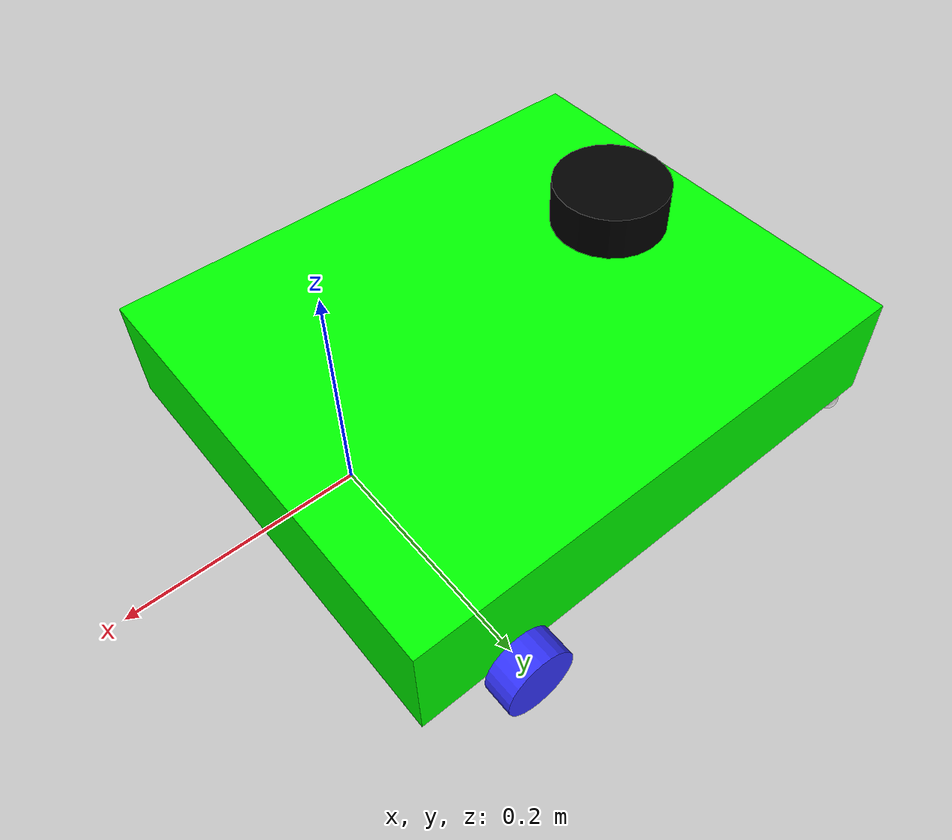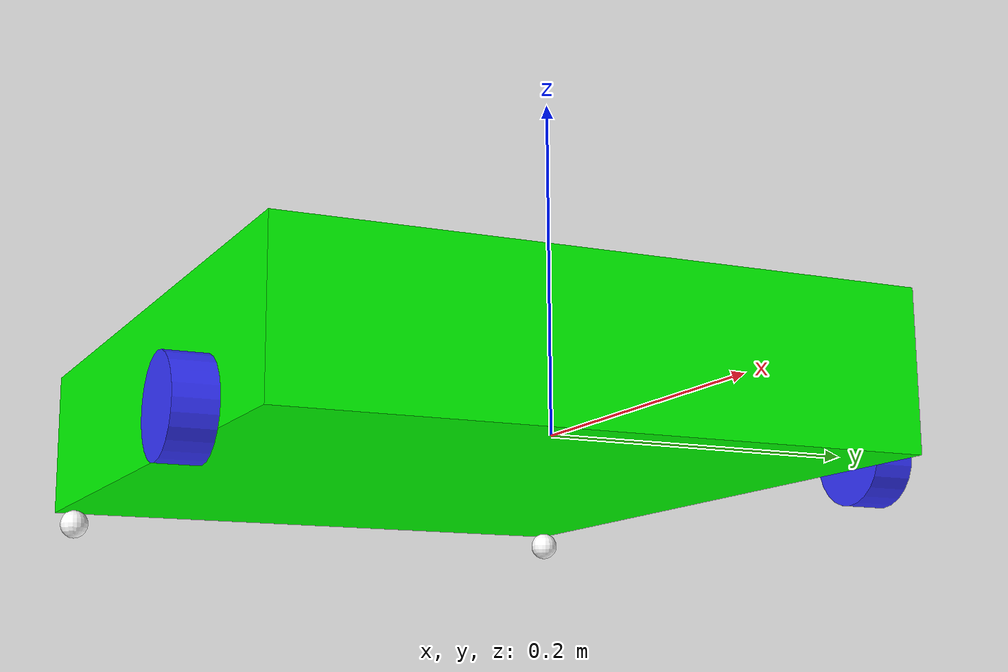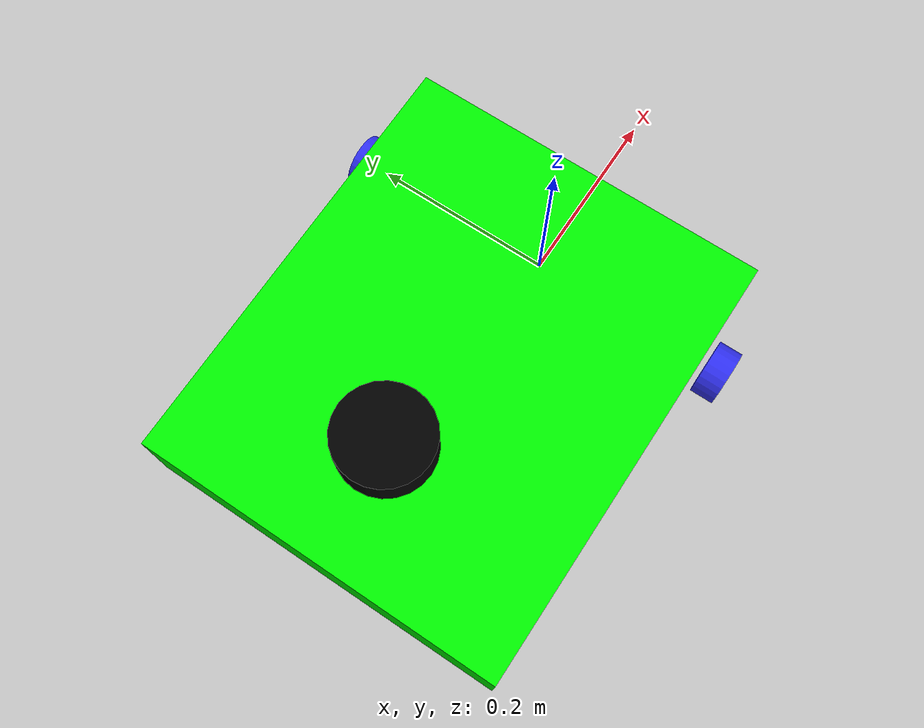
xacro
<?xml version="1.0"?>
<robot xmlns:xacro="http://www.ros.org/wiki/xacro" name="robot">

    <xacro:arg name="use_ros2_control" default="true" />
    <xacro:arg name="sim_mode" default="false" />

    <xacro:include filename="robot_core.xacro" />

    <xacro:if value="$(arg use_ros2_control)">
        <xacro:include filename="ros2_control2.xacro" />
    </xacro:if>
    <xacro:unless value="$(arg use_ros2_control)">
        <xacro:include filename="gazebo_control.xacro" />
    </xacro:unless>
    <xacro:include filename="lidar.xacro" />

</robot>

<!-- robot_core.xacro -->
<robot xmlns:xacro="http://www.ros.org/wiki/xacro">

    <xacro:include filename="inertial_macros.xacro" />

    <xacro:property name="chassis_length" value="0.48" />
    <xacro:property name="chassis_width" value="0.4" />
    <xacro:property name="chassis_height" value="0.1" />
    <xacro:property name="chassis_mass" value="1.0" />
    <xacro:property name="wheel_radius" value="0.03" />
    <xacro:property name="wheel_thickness" value="0.026" />
    <xacro:property name="wheel_mass" value="0.05" />
    <xacro:property name="wheel_offset_x" value="0.4" />
    <xacro:property name="wheel_offset_y" value="0.22" />
    <xacro:property name="wheel_offset_z" value="0.01" />
    <xacro:property name="caster_wheel_radius" value="0.01" />
    <xacro:property name="caster_wheel_mass" value="0.01" />
    <xacro:property name="caster_wheel_offset_x" value="0.02" />
    <xacro:property name="caster_wheel_offset_z"
        value="${wheel_offset_z - wheel_radius + caster_wheel_radius}" />
    <xacro:property name="caster_wheel_offset_y" value="0.19" />

    <material name="white">
        <color rgba="1 1 1 1" />
    </material>

    <material name="green">
         <color rgba="0 1 0 1" />
    </material>

    <material name="blue">
        <color rgba="0.2 0.2 1 1" />
    </material>

    <material name="black">
        <color rgba="0 0 0 1" />
    </material>

    <material name="red">
        <color rgba="1 0 0 1" />
    </material>

    <!-- BASE LINK -->

    <link name="base_link">

    </link>

    <!-- BASE_FOOTPRINT LINK -->

    <joint name="base_footprint_joint" type="fixed">
        <parent link="base_link" />
        <child link="base_footprint" />
        <origin xyz="0 0 0" rpy="0 0 0" />
    </joint>

    <link name="base_footprint">
    </link>

    <!-- CHASSIS LINK -->

    <joint name="chassis_joint" type="fixed">
        <parent link="base_link" />
        <child link="chassis" />
        <origin xyz="${-wheel_offset_x} 0 ${-wheel_offset_z}" />
    </joint>

    <link name="chassis">
        <visual>
            <origin xyz="${chassis_length/2} 0 ${chassis_height/2}" />
            <geometry>
                <box size="${chassis_length} ${chassis_width} ${chassis_height}" />
            </geometry>
            <material name="green" />
        </visual>
        <collision>
            <origin xyz="${chassis_length/2} 0 ${chassis_height/2}" />
            <geometry>
                <box size="${chassis_length} ${chassis_width} ${chassis_height}" />
            </geometry>
        </collision>
        <xacro:inertial_box mass="0.5" x="${chassis_length}" y="${chassis_width}"
            z="${chassis_height}">
            <origin xyz="${chassis_length/2} 0 ${chassis_height/2}" rpy="0 0 0" />
        </xacro:inertial_box>
    </link>

    <gazebo reference="chassis">
        <material>Gazebo/Green</material>
    </gazebo>

    <!-- LEFT WHEEL LINK -->

    <joint name="left_wheel_joint" type="continuous">
        <parent link="base_link" />
        <child link="left_wheel" />
        <origin xyz="0 ${wheel_offset_y} 0" rpy="-${pi/2} 0 0" />
        <axis xyz="0 0 1" />
    </joint>

    <link name="left_wheel">
        <visual>
            <geometry>
                <cylinder radius="${wheel_radius}" length="${wheel_thickness}" />
            </geometry>
            <material name="blue" />
        </visual>
        <collision>
            <geometry>
                <sphere radius="${wheel_radius}" />
            </geometry>
        </collision>
        <xacro:inertial_cylinder mass="${wheel_mass}" length="${wheel_thickness}"
            radius="${wheel_radius}">
            <origin xyz="0 0 0" rpy="0 0 0" />
        </xacro:inertial_cylinder>
    </link>

    <gazebo reference="left_wheel">
        <material>Gazebo/Blue</material>
    </gazebo>

    <!-- RIGHT WHEEL LINK -->

    <joint name="right_wheel_joint" type="continuous">
        <parent link="base_link" />
        <child link="right_wheel" />
        <origin xyz="0 ${-wheel_offset_y} 0" rpy="${pi/2} 0 0" />
        <axis xyz="0 0 -1" />
    </joint>

    <link name="right_wheel">
        <visual>
            <geometry>
                <cylinder radius="${wheel_radius}" length="${wheel_thickness}" />
            </geometry>
            <material name="blue" />
        </visual>
        <collision>
            <geometry>
                <sphere radius="${wheel_radius}" />
            </geometry>
        </collision>
        <xacro:inertial_cylinder mass="${wheel_mass}" length="${wheel_thickness}"
            radius="${wheel_radius}">
            <origin xyz="0 0 0" rpy="0 0 0" />
        </xacro:inertial_cylinder>
    </link>

    <gazebo reference="right_wheel">
        <material>Gazebo/Blue</material>
    </gazebo>

    <!-- CASTER WHEEL LINK -->

    <joint name="caster_wheel_joint" type="fixed">
        <parent link="chassis" />
        <child link="caster_wheel" />
        <origin xyz="${caster_wheel_offset_x} ${caster_wheel_offset_y} ${caster_wheel_offset_z}" />
    </joint>

    <link name="caster_wheel">
        <visual>
            <geometry>
                <sphere radius="${caster_wheel_radius}" />
            </geometry>
            <material name="white" />
        </visual>
        <collision>
            <geometry>
                <sphere radius="${caster_wheel_radius}" />
            </geometry>
        </collision>
        <xacro:inertial_sphere mass="${caster_wheel_mass}" radius="${caster_wheel_radius}">
            <origin xyz="0 0 0" rpy="0 0 0" />
        </xacro:inertial_sphere>
    </link>

    <gazebo reference="caster_wheel">
        <material>Gazebo/White</material>
        <mu1 value="0.001" />
        <mu2 value="0.001" />
    </gazebo>

        <!-- CASTER WHEEL LINK -->

        <joint name="caster_wheel_joint2" type="fixed">
            <parent link="chassis" />
            <child link="caster_wheel2" />
            <origin xyz="${caster_wheel_offset_x} ${-caster_wheel_offset_y} ${caster_wheel_offset_z}" />
        </joint>

        <link name="caster_wheel2">
            <visual>
                <geometry>
                    <sphere radius="${caster_wheel_radius}" />
                </geometry>
                <material name="white" />
            </visual>
            <collision>
                <geometry>
                    <sphere radius="${caster_wheel_radius}" />
                </geometry>
            </collision>
            <xacro:inertial_sphere mass="${caster_wheel_mass}" radius="${caster_wheel_radius}">
                <origin xyz="0 0 0" rpy="0 0 0" />
            </xacro:inertial_sphere>
        </link>

        <gazebo reference="caster_wheel2">
            <material>Gazebo/White</material>
            <mu1 value="0.001" />
            <mu2 value="0.001" />
        </gazebo>

</robot>

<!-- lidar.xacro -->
<robot xmlns:xacro="http://www.ros.org/wiki/xacro">

    <joint name="laser_joint" type="fixed">
        <parent link="chassis" />
        <child link="laser_frame" />
        <origin xyz="0.122 0 0.150" rpy="0 0 0" />
    </joint>

    <link name="laser_frame">
        <visual>
            <geometry>
                <cylinder radius="0.05" length="0.04" />
            </geometry>
            <material name="black" />
        </visual>
        <visual>
            <origin xyz="0 0 -0.05" />
            <geometry>
                <cylinder radius="0.01" length="0.1" />
            </geometry>
            <material name="black" />
        </visual>
        <collision>
            <geometry>
                <cylinder radius="0.05" length="0.04" />
            </geometry>
        </collision>
        <xacro:inertial_cylinder mass="0.1" length="0.04" radius="0.05">
            <origin xyz="0 0 0" rpy="0 0 0" />
        </xacro:inertial_cylinder>
    </link>

    <gazebo reference="laser_frame">
        <material>Gazebo/Black</material>

        <sensor name="laser" type="ray">
            <pose> 0 0 0 0 0 0 </pose>
            <visualize>false</visualize>
            <update_rate>10</update_rate>
            <ray>
                <scan>
                    <horizontal>
                        <samples>360</samples>
                        <min_angle>-3.14</min_angle>
                        <max_angle>3.14</max_angle>
                    </horizontal>
                </scan>
                <range>
                    <min>0.3</min>
                    <max>12</max>
                </range>
            </ray>
            <plugin name="laser_controller" filename="libgazebo_ros_ray_sensor.so">
                <ros>
                    <argument>~/out:=scan</argument>
                </ros>
                <output_type>sensor_msgs/LaserScan</output_type>
                <frame_name>laser_frame</frame_name>
            </plugin>
        </sensor>
    </gazebo>

</robot>
